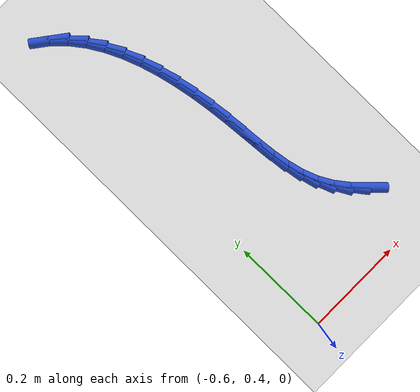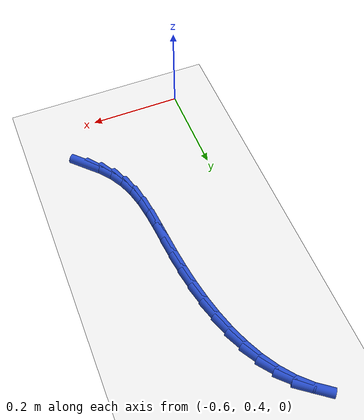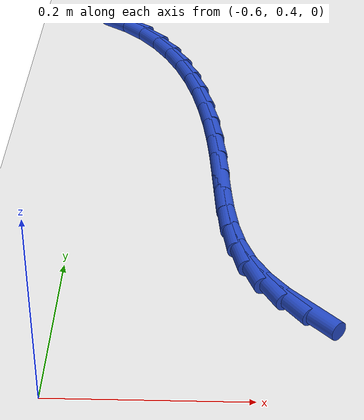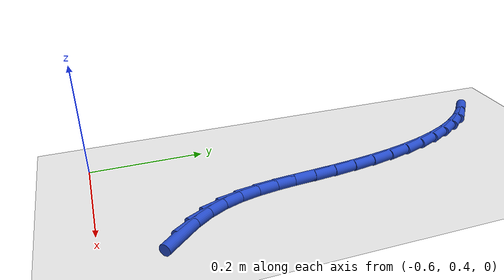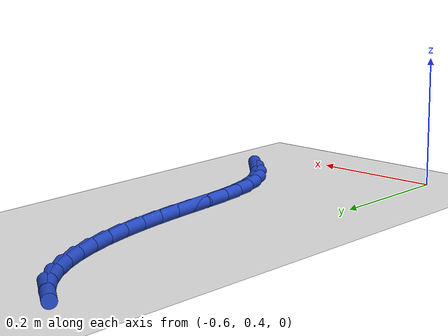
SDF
<sdf version="1.6">
 <world name="default">
  <model name="ground_plane">
   <static>1</static>
   <link name="link">
    <collision name="collision">
     <geometry><plane><normal>0 0 1</normal><size>100 100</size></plane></geometry>
     <surface><friction><ode><mu>100</mu><mu2>50</mu2></ode></friction></surface>
    </collision>
    <visual name="visual">
     <cast_shadows>0</cast_shadows>
     <geometry><plane><normal>0 0 1</normal><size>100 100</size></plane></geometry>
     <material>
      <script><uri>file://media/materials/scripts/gazebo.material</uri><name>Gazebo/WhiteGlow</name></script>
     </material>
    </visual>
   </link>
  </model>
  <model name="line">
   <link name="link_19">
    <pose>-0.3469819035942063 0.5181411322928605 0.01 0 1.57 -0.8049470517846877</pose>
    <collision name="collision">
     <geometry><cylinder><radius>0.01</radius><length>0.08</length></cylinder></geometry>
    </collision>
    <visual name="visual">
     <material>
      <script><name>Gazebo/Blue</name><uri>file://media/materials/scripts/gazebo.material</uri></script>
     </material>
     <geometry><cylinder><radius>0.01</radius><length>0.08</length></cylinder></geometry>
    </visual>
   </link>
   <link name="link_20">
    <pose>-0.370181275135824 0.5422657531469931 0.01 0 1.57 -0.9192214256870803</pose>
    <collision name="collision">
     <geometry><cylinder><radius>0.01</radius><length>0.08</length></cylinder></geometry>
    </collision>
    <visual name="visual">
     <material>
      <script><name>Gazebo/Blue</name><uri>file://media/materials/scripts/gazebo.material</uri></script>
     </material>
     <geometry><cylinder><radius>0.01</radius><length>0.08</length></cylinder></geometry>
    </visual>
   </link>
   <link name="link_21">
    <pose>-0.3898997763189213 0.5681195578017115 0.01 0 1.57 -1.0607809543851017</pose>
    <collision name="collision">
     <geometry><cylinder><radius>0.01</radius><length>0.08</length></cylinder></geometry>
    </collision>
    <visual name="visual">
     <material>
      <script><name>Gazebo/Blue</name><uri>file://media/materials/scripts/gazebo.material</uri></script>
     </material>
     <geometry><cylinder><radius>0.01</radius><length>0.08</length></cylinder></geometry>
    </visual>
   </link>
   <link name="link_22">
    <pose>-0.40551247960679276 0.5960303412513841 0.01 0 1.57 -1.2092258562447675</pose>
    <collision name="collision">
     <geometry><cylinder><radius>0.01</radius><length>0.08</length></cylinder></geometry>
    </collision>
    <visual name="visual">
     <material>
      <script><name>Gazebo/Blue</name><uri>file://media/materials/scripts/gazebo.material</uri></script>
     </material>
     <geometry><cylinder><radius>0.01</radius><length>0.08</length></cylinder></geometry>
    </visual>
   </link>
   <link name="link_23">
    <pose>-0.41690037989489975 0.6261413777997294 0.01 0 1.57 -1.32772804652969</pose>
    <collision name="collision">
     <geometry><cylinder><radius>0.01</radius><length>0.08</length></cylinder></geometry>
    </collision>
    <visual name="visual">
     <material>
      <script><name>Gazebo/Blue</name><uri>file://media/materials/scripts/gazebo.material</uri></script>
     </material>
     <geometry><cylinder><radius>0.01</radius><length>0.08</length></cylinder></geometry>
    </visual>
   </link>
   <link name="link_24">
    <pose>-0.42486493000674563 0.6582602311320055 0.01 0 1.57 -1.4116682011349573</pose>
    <collision name="collision">
     <geometry><cylinder><radius>0.01</radius><length>0.08</length></cylinder></geometry>
    </collision>
    <visual name="visual">
     <material>
      <script><name>Gazebo/Blue</name><uri>file://media/materials/scripts/gazebo.material</uri></script>
     </material>
     <geometry><cylinder><radius>0.01</radius><length>0.08</length></cylinder></geometry>
    </visual>
   </link>
   <link name="link_25">
    <pose>-0.43030515460128826 0.6921588784061253 0.01 0 1.57 -1.463595929834976</pose>
    <collision name="collision">
     <geometry><cylinder><radius>0.01</radius><length>0.08</length></cylinder></geometry>
    </collision>
    <visual name="visual">
     <material>
      <script><name>Gazebo/Blue</name><uri>file://media/materials/scripts/gazebo.material</uri></script>
     </material>
     <geometry><cylinder><radius>0.01</radius><length>0.08</length></cylinder></geometry>
    </visual>
   </link>
   <link name="link_26">
    <pose>-0.4341200783374854 0.7276092967800031 0.01 0 1.57 -1.4870033899448325</pose>
    <collision name="collision">
     <geometry><cylinder><radius>0.01</radius><length>0.08</length></cylinder></geometry>
    </collision>
    <visual name="visual">
     <material>
      <script><name>Gazebo/Blue</name><uri>file://media/materials/scripts/gazebo.material</uri></script>
     </material>
     <geometry><cylinder><radius>0.01</radius><length>0.08</length></cylinder></geometry>
    </visual>
   </link>
   <link name="link_27">
    <pose>-0.4372087258742949 0.7643834634115524 0.01 0 1.57 -1.4848872198881395</pose>
    <collision name="collision">
     <geometry><cylinder><radius>0.01</radius><length>0.08</length></cylinder></geometry>
    </collision>
    <visual name="visual">
     <material>
      <script><name>Gazebo/Blue</name><uri>file://media/materials/scripts/gazebo.material</uri></script>
     </material>
     <geometry><cylinder><radius>0.01</radius><length>0.08</length></cylinder></geometry>
    </visual>
   </link>
   <link name="link_28">
    <pose>-0.4404701218706746 0.8022533554586873 0.01 0 1.57 -1.46141886753978</pose>
    <collision name="collision">
     <geometry><cylinder><radius>0.01</radius><length>0.08</length></cylinder></geometry>
    </collision>
    <visual name="visual">
     <material>
      <script><name>Gazebo/Blue</name><uri>file://media/materials/scripts/gazebo.material</uri></script>
     </material>
     <geometry><cylinder><radius>0.01</radius><length>0.08</length></cylinder></geometry>
    </visual>
   </link>
   <link name="link_29">
    <pose>-0.4447207933494986 0.8409606641183603 0.01 0 1.57 -1.4280645154312355</pose>
    <collision name="collision">
     <geometry><cylinder><radius>0.01</radius><length>0.08</length></cylinder></geometry>
    </collision>
    <visual name="visual">
     <material>
      <script><name>Gazebo/Blue</name><uri>file://media/materials/scripts/gazebo.material</uri></script>
     </material>
     <geometry><cylinder><radius>0.01</radius><length>0.08</length></cylinder></geometry>
    </visual>
   </link>
   <link name="link_30">
    <pose>-0.4503437343347484 0.8800879249546718 0.01 0 1.57 -1.3876931762479712</pose>
    <collision name="collision">
     <geometry><cylinder><radius>0.01</radius><length>0.08</length></cylinder></geometry>
    </collision>
    <visual name="visual">
     <material>
      <script><name>Gazebo/Blue</name><uri>file://media/materials/scripts/gazebo.material</uri></script>
     </material>
     <geometry><cylinder><radius>0.01</radius><length>0.08</length></cylinder></geometry>
    </visual>
   </link>
   <link name="link_31">
    <pose>-0.4575800264406972 0.9191655756304437 0.01 0 1.57 -1.3392617157119997</pose>
    <collision name="collision">
     <geometry><cylinder><radius>0.01</radius><length>0.08</length></cylinder></geometry>
    </collision>
    <visual name="visual">
     <material>
      <script><name>Gazebo/Blue</name><uri>file://media/materials/scripts/gazebo.material</uri></script>
     </material>
     <geometry><cylinder><radius>0.01</radius><length>0.08</length></cylinder></geometry>
    </visual>
   </link>
   <link name="link_32">
    <pose>-0.46667066988374883 0.9577240239262774 0.01 0 1.57 -1.2814140601729507</pose>
    <collision name="collision">
     <geometry><cylinder><radius>0.01</radius><length>0.08</length></cylinder></geometry>
    </collision>
    <visual name="visual">
     <material>
      <script><name>Gazebo/Blue</name><uri>file://media/materials/scripts/gazebo.material</uri></script>
     </material>
     <geometry><cylinder><radius>0.01</radius><length>0.08</length></cylinder></geometry>
    </visual>
   </link>
   <link name="link_33">
    <pose>-0.47785666488030637 0.9952936776227727 0.01 0 1.57 -1.2124962077877541</pose>
    <collision name="collision">
     <geometry><cylinder><radius>0.01</radius><length>0.08</length></cylinder></geometry>
    </collision>
    <visual name="visual">
     <material>
      <script><name>Gazebo/Blue</name><uri>file://media/materials/scripts/gazebo.material</uri></script>
     </material>
     <geometry><cylinder><radius>0.01</radius><length>0.08</length></cylinder></geometry>
    </visual>
   </link>
   <link name="link_34">
    <pose>-0.4913790116467733 1.0314049445005296 0.01 0 1.57 -1.1306317666146155</pose>
    <collision name="collision">
     <geometry><cylinder><radius>0.01</radius><length>0.08</length></cylinder></geometry>
    </collision>
    <visual name="visual">
     <material>
      <script><name>Gazebo/Blue</name><uri>file://media/materials/scripts/gazebo.material</uri></script>
     </material>
     <geometry><cylinder><radius>0.01</radius><length>0.08</length></cylinder></geometry>
    </visual>
   </link>
   <link name="link_35">
    <pose>-0.5074787103995532 1.0655882323401487 0.01 0 1.57 -1.0339324738233127</pose>
    <collision name="collision">
     <geometry><cylinder><radius>0.01</radius><length>0.08</length></cylinder></geometry>
    </collision>
    <visual name="visual">
     <material>
      <script><name>Gazebo/Blue</name><uri>file://media/materials/scripts/gazebo.material</uri></script>
     </material>
     <geometry><cylinder><radius>0.01</radius><length>0.08</length></cylinder></geometry>
    </visual>
   </link>
   <link name="link_36">
    <pose>-0.5263967613550492 1.0973739489222303 0.01 0 1.57 -0.9209411549852236</pose>
    <collision name="collision">
     <geometry><cylinder><radius>0.01</radius><length>0.08</length></cylinder></geometry>
    </collision>
    <visual name="visual">
     <material>
      <script><name>Gazebo/Blue</name><uri>file://media/materials/scripts/gazebo.material</uri></script>
     </material>
     <geometry><cylinder><radius>0.01</radius><length>0.08</length></cylinder></geometry>
    </visual>
   </link>
   <link name="link_37">
    <pose>-0.548374164729665 1.1262925020273746 0.01 0 1.57 -0.7913761509424856</pose>
    <collision name="collision">
     <geometry><cylinder><radius>0.01</radius><length>0.08</length></cylinder></geometry>
    </collision>
    <visual name="visual">
     <material>
      <script><name>Gazebo/Blue</name><uri>file://media/materials/scripts/gazebo.material</uri></script>
     </material>
     <geometry><cylinder><radius>0.01</radius><length>0.08</length></cylinder></geometry>
    </visual>
   </link>
   <link name="link_38">
    <pose>-0.573651920739804 1.151874299436182 0.01 0 1.57 -0.6470695402236666</pose>
    <collision name="collision">
     <geometry><cylinder><radius>0.01</radius><length>0.08</length></cylinder></geometry>
    </collision>
    <visual name="visual">
     <material>
      <script><name>Gazebo/Blue</name><uri>file://media/materials/scripts/gazebo.material</uri></script>
     </material>
     <geometry><cylinder><radius>0.01</radius><length>0.08</length></cylinder></geometry>
    </visual>
   </link>
  </model>
 </world>
</sdf>
